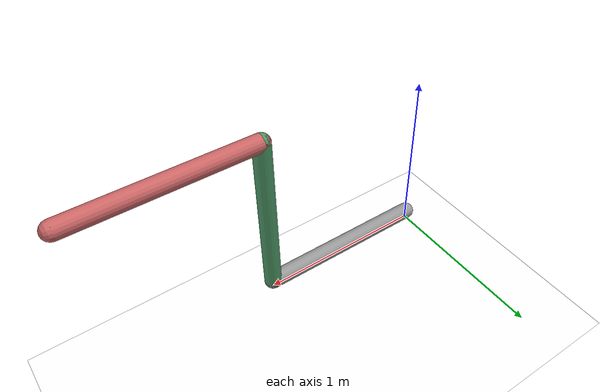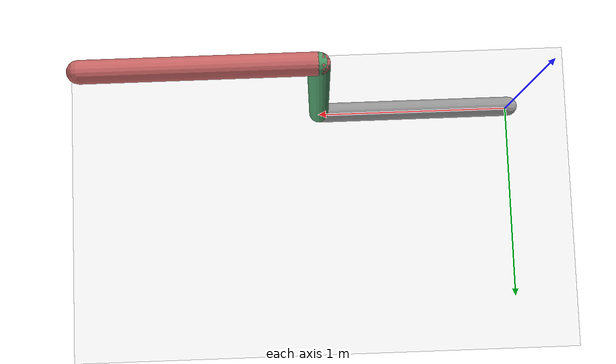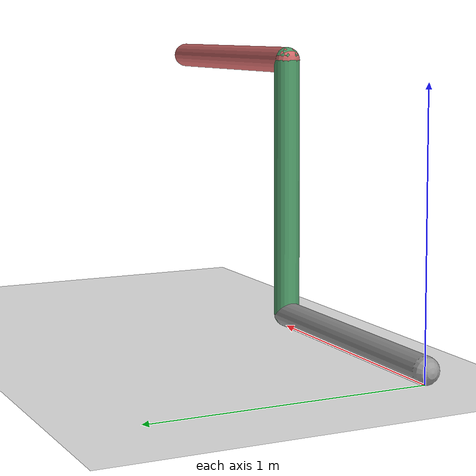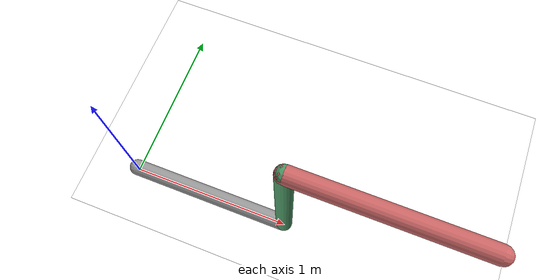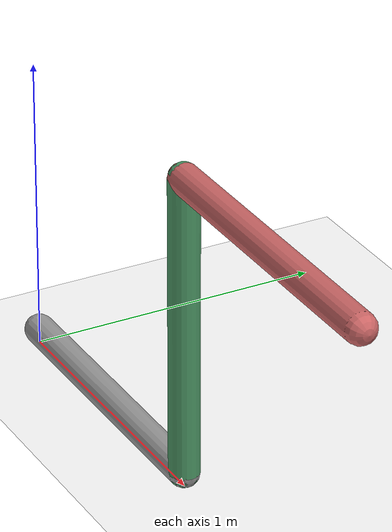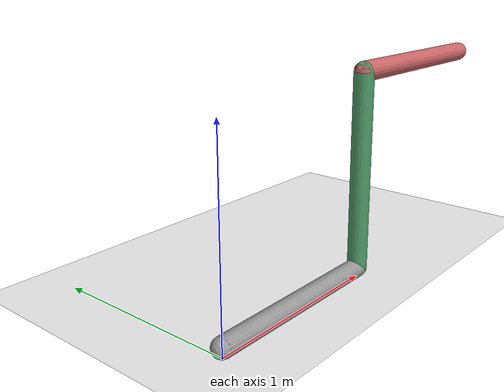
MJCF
<mujoco model="morphology">
    <default>
        <default class="env" />
    </default>
    <asset>
        <texture name="texplane" type="2d" builtin="checker"
            rgb1="0.1 0.2 0.3"
            rgb2="0.2 0.3 0.4" width="300"
            height="300" />
        <material name="MatPlane" texture="texplane" texrepeat="20 20" />
    </asset>
    <worldbody>
        <light directional="true" pos="0 0 1.5"
            dir="0 0 -1.3"
            cutoff="100.0" exponent="1.0" diffuse="1 1 1"
            specular="0.1 0.1 0.1" />
        <geom type="plane" size="15 15 0.5" material="MatPlane" rgba="1 1 1 1" />
        <body pos="0 0 0.05">
            <geom type="capsule" size="0.05"
                rgba="0.6 0.6 0.6 1"
                fromto="0 0 0 1 0 0" />
            <body pos="1 0 0">
                <joint name="joint0" type="hinge" axis="0 1 0" range="-40 40" limited="true"
                    stiffness="10" armature="0.2" />
                <geom type="capsule" size="0.05"
                    rgba="0.3 0.6 0.4 1"
                    fromto="0 0 0 0 0 1" />
                <body pos="0 0 1">
                    <joint name="joint1" type="hinge" axis="0 1 0" range="-40 40" limited="true"
                        stiffness="10" armature="0.2" />
                    <geom type="capsule" size="0.05"
                        rgba="0.8 0.4 0.4 1"
                        fromto="0 0 0 1 0 0" />
                </body>
            </body>
        </body>
    </worldbody>
    <actuator>
        <motor ctrllimited="true" ctrlrange="-1 1" gear="200" joint="joint0" />
        <motor ctrllimited="true" ctrlrange="-1 1" gear="200" joint="joint1" />
    </actuator>
</mujoco>
